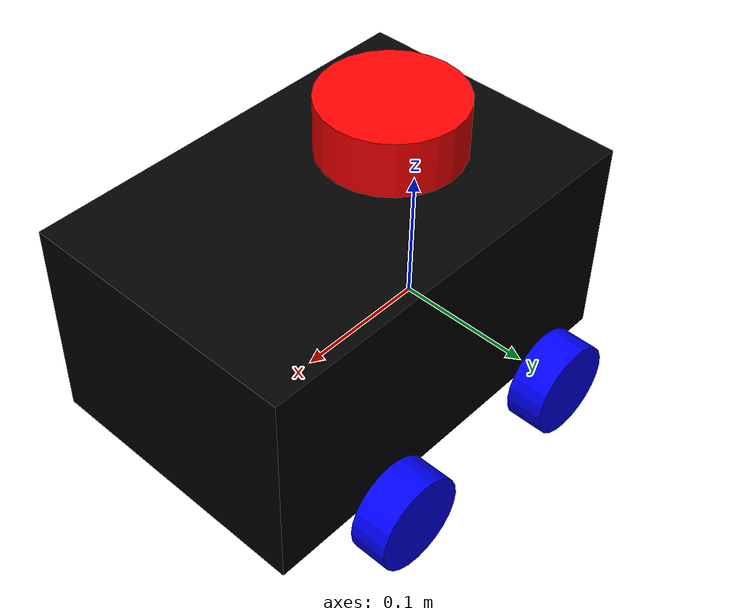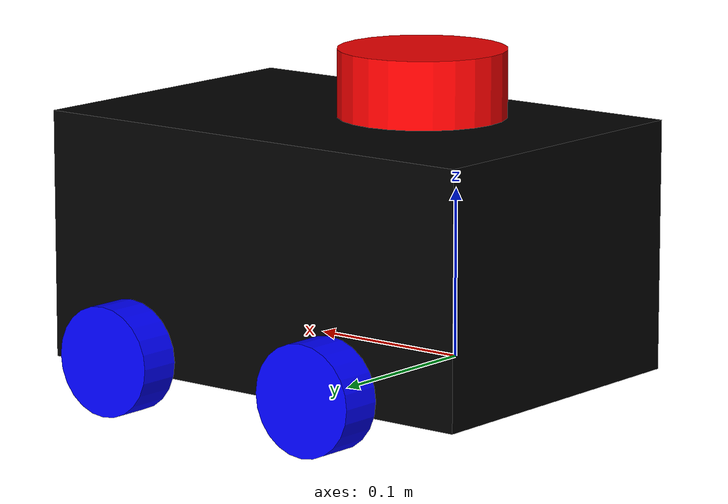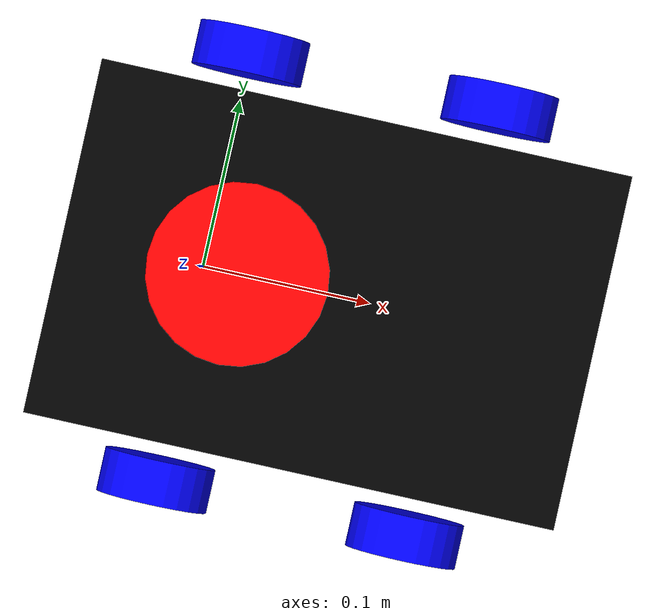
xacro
<?xml version="1.0"?>
<robot xmlns:xacro="http://www.ros.org/wiki/xacro"  name="clydesdale_robot">

    <xacro:arg name="use_ros2_control" default="true"/>

    <xacro:include filename="clydedale_robot_core.urdf.xacro" />
    <xacro:include filename="lidar.xacro" />

    <xacro:if value="$(arg use_ros2_control)">
        <xacro:include filename="ros2_control.xacro"/>
    </xacro:if>
    <xacro:unless value="$(arg use_ros2_control)">
        <xacro:include filename="gazebo_control.urdf.xacro" />
    </xacro:unless>
</robot>

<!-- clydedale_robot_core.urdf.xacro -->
<robot xmlns:xacro="http://www.ros.org/wiki/xacro">

    <xacro:include filename="inertial_macros.xacro"/>

    <material name="black">
        <color rgba="0 0 0 1"/>
    </material>

    <material name="yellow">
        <color rgba="1 1 0 1"/>
    </material>

    <material name="gray">
        <color rgba="0.5 0.5 0.5 1"/>
    </material>

    <material name="blue">
        <color rgba="0 0 1 1"/>
    </material>

    <material name="olive">
        <color rgba="0.5 0.5 0 1"/>
    </material>

    <material name="red">
        <color rgba="1 0 0 1"/>
    </material>

     <!-- Constants for robot dimensions -->
    <xacro:property name="chassis_mass" value="1.0"/>
    <xacro:property name="chassis_length" value="0.3"/>
    <xacro:property name="chassis_width" value="0.2"/>
    <xacro:property name="chassis_height" value="0.15"/>
    <xacro:property name="wheel_radius" value="0.033"/>
    <xacro:property name="wheel_thickness" value="0.026"/>
    <xacro:property name="wheel_mass" value="0.05"/>
    <xacro:property name="wheel_offset_x" value="0.075"/>
    <xacro:property name="wheel_offset_y" value="0.1285"/>
    <xacro:property name="wheel_offset_z" value="0.015"/>

    <!-- base_link -->
    <link name="base_link">
    </link>

     <!-- BASE_FOOTPRINT LINK -->

    <joint name="base_footprint_joint" type="fixed">
        <parent link="base_link"/>
        <child link="base_footprint"/>
        <origin xyz="0 0 0" rpy="0 0 0"/>
    </joint>

    <link name="base_footprint">
    </link>

    <!-- chassis -->
    <joint name="chassis_joint" type="fixed">
        <parent link="base_link"/>
        <child link="chassis_link"/>
        <origin xyz="${-wheel_offset_x} 0 ${-wheel_offset_z}"/>
    </joint>

    <link name="chassis_link">
        <visual>
            <origin xyz="${chassis_length/2} 0 ${chassis_height/2}"/>
            <geometry>
                <box size="${chassis_length} ${chassis_width} ${chassis_height}"/>
            </geometry>
            <material name="black"/>
        </visual>
        <collision>
            <origin xyz="${chassis_length/2} 0 ${chassis_height/2}"/>
            <geometry>
                <box size="${chassis_length} ${chassis_width} ${chassis_height}"/>
            </geometry>
        </collision>
        <xacro:inertial_box mass="0.5" x="${chassis_length}" y="${chassis_width}" z="${chassis_height}">
            <origin xyz="${chassis_length/2} 0 ${chassis_height/2}" rpy="0 0 0"/>
        </xacro:inertial_box>
    </link>

    <gazebo reference="chassis_link">
        <material>Gazebo/Black</material>
    </gazebo>

    <!--Macro Wheel-->
    <xacro:macro name="wheel_link" params="prefix place">
        <link name="${prefix}_wheel_${place}_link">
            <visual>
                <geometry>
                    <cylinder radius="${wheel_radius}" length="${wheel_thickness}"/>
                </geometry>
                <material name="blue"/>
            </visual>
            <collision>
                <geometry>
                    <sphere radius="${wheel_radius}"/>
                </geometry>
            </collision>
            <xacro:inertial_cylinder mass="${wheel_mass}" length="${wheel_thickness}" radius="${wheel_radius}">
                <origin xyz="0 0 0" rpy="0 0 0"/>
            </xacro:inertial_cylinder>
        </link>

        <gazebo reference="${prefix}_wheel_${place}_link">
            <material>Gazebo/Yellow</material>
        </gazebo>
    </xacro:macro>

    <!--Left Wheel Front-->
   <joint name="left_wheel_front_joint" type="fixed">
        <parent link="base_link" />
        <child link="left_wheel_front_link" />
        <origin xyz="0.15 ${wheel_offset_y} 0" rpy="-${pi/2} 0 0" />
        <axis xyz="0 0 1" />
    </joint>

    <xacro:wheel_link prefix="left" place="front" />

    <gazebo reference="left_wheel_front_link">
            <mu1 value="0.001"/>
            <mu2 value="0.001"/>
    </gazebo>

    <!--Left Wheel back-->
    <joint name="left_wheel_back_joint" type="continuous">
        <parent link="base_link" />
        <child link="left_wheel_back_link" />
        <origin xyz="0 ${wheel_offset_y} 0" rpy="-${pi/2} 0 0" />
        <axis xyz="0 0 1"/>
    </joint>

    <xacro:wheel_link prefix="left" place="back" />

    <!--Right Wheel Front-->
    <joint name="right_wheel_front_joint" type="fixed">
        <parent link="base_link" />
        <child link="right_wheel_front_link" />
        <origin xyz="0.15 ${-wheel_offset_y}  0" rpy="${pi/2} 0 0" />
        <axis xyz="0 0 -1" />
    </joint>

    <xacro:wheel_link prefix="right" place="front" />

    <gazebo reference="right_wheel_front_link">
            <mu1 value="0.001"/>
            <mu2 value="0.001"/>
    </gazebo>

     <!--right Wheel Back-->
    <joint name="right_wheel_back_joint" type="continuous">
        <parent link="base_link" />
        <child link="right_wheel_back_link" />
        <origin xyz="0 ${-wheel_offset_y} 0" rpy="${pi/2} 0 0" />
        <axis xyz="0 0 -1"/>
    </joint>

    <xacro:wheel_link prefix="right" place="back" />

</robot>

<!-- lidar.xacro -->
<robot xmlns:xacro="http://www.ros.org/wiki/xacro">

    <joint name="laser_joint" type="fixed">
        <parent link="chassis_link"/>
        <child link="laser_frame"/>
        <origin xyz="0.1 0 0.175" rpy="0 0 0"/>
    </joint>

    <link name="laser_frame">
        <visual>
            <geometry>
                <cylinder radius="0.05" length="0.04" />
            </geometry>
            <material name="red" />
        </visual>
        <collision>
            <geometry>
               <cylinder radius="0.05" length="0.04" />
            </geometry>
            <origin xyz="0 0 0" rpy="0 0 0" />
        </collision>
        <xacro:inertial_cylinder mass="0.1" length="0.04" radius="0.05">
            <origin xyz="0 0 0" rpy="0 0 0" />
        </xacro:inertial_cylinder>
    </link>

    <gazebo reference="laser_frame">
        <material>Gazebo/Red</material>

        <sensor name="laser" type="ray">
            <pose> 0 0 0 0 0 0 </pose>
            <visualize>true</visualize>
            <update_rate>10</update_rate>
            <ray>
                <scan>
                    <horizontal>
                        <samples>360</samples>
                        <min_angle>-3.14</min_angle>
                        <max_angle>3.14</max_angle>
                    </horizontal>
                </scan>
                <range>
                    <min>0.3</min>
                    <max>12</max>
                </range>
            </ray>
            <plugin name="laser_controller" filename="libgazebo_ros_ray_sensor.so">
                <ros>
                    <argument>~/out:=scan</argument>
                </ros>
                <output_type>sensor_msgs/LaserScan</output_type>
                <frame_name>laser_frame</frame_name>
            </plugin>
        </sensor>
    </gazebo>

</robot>
